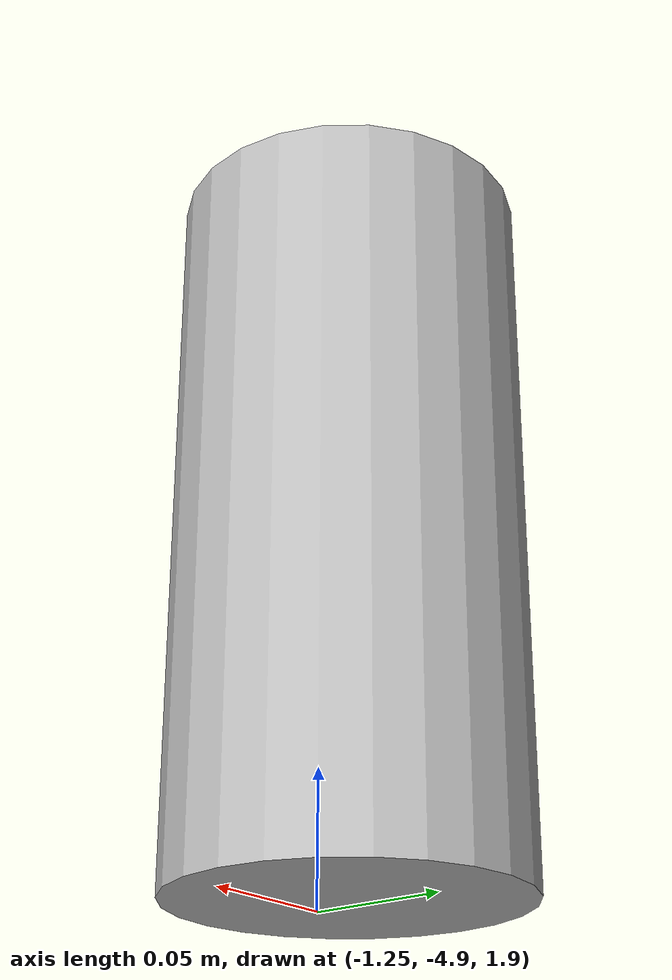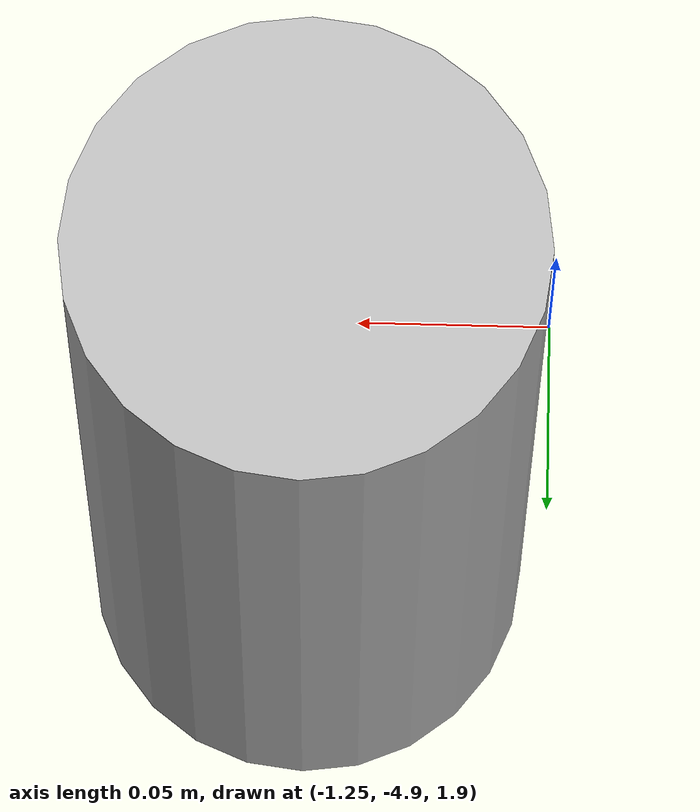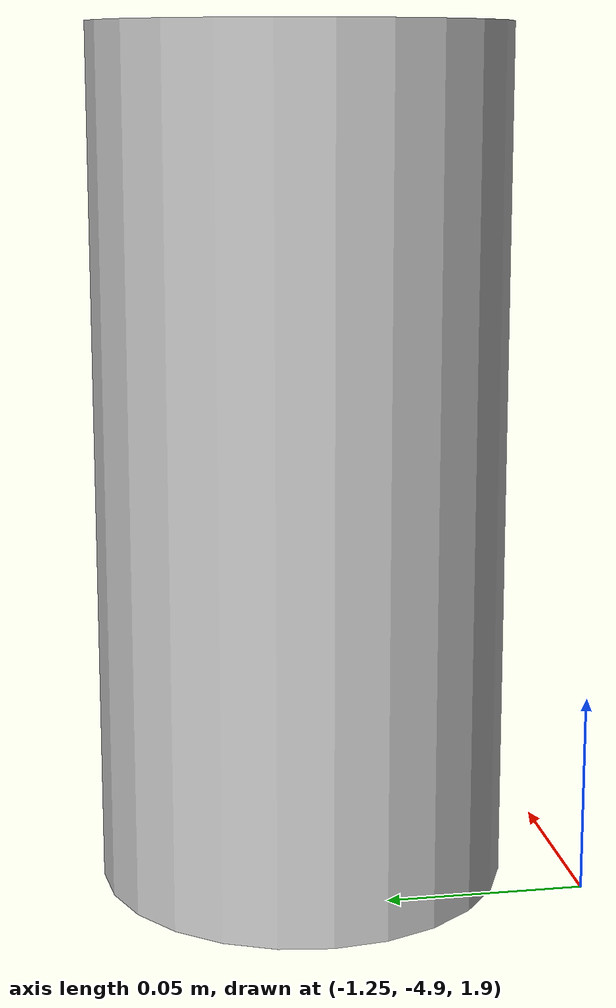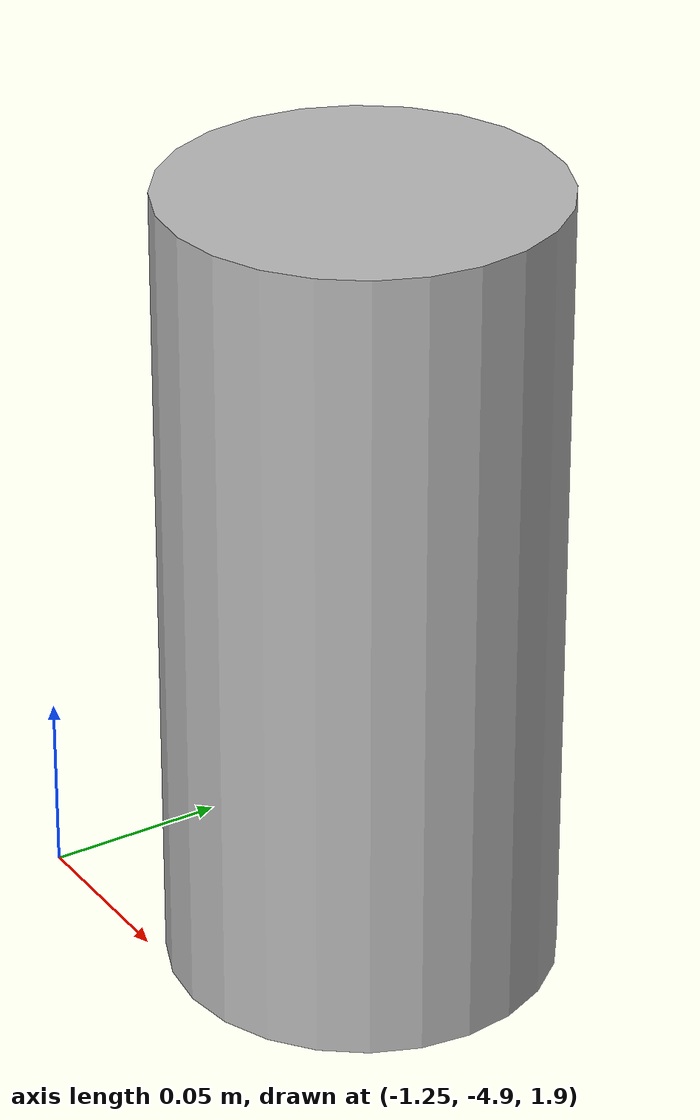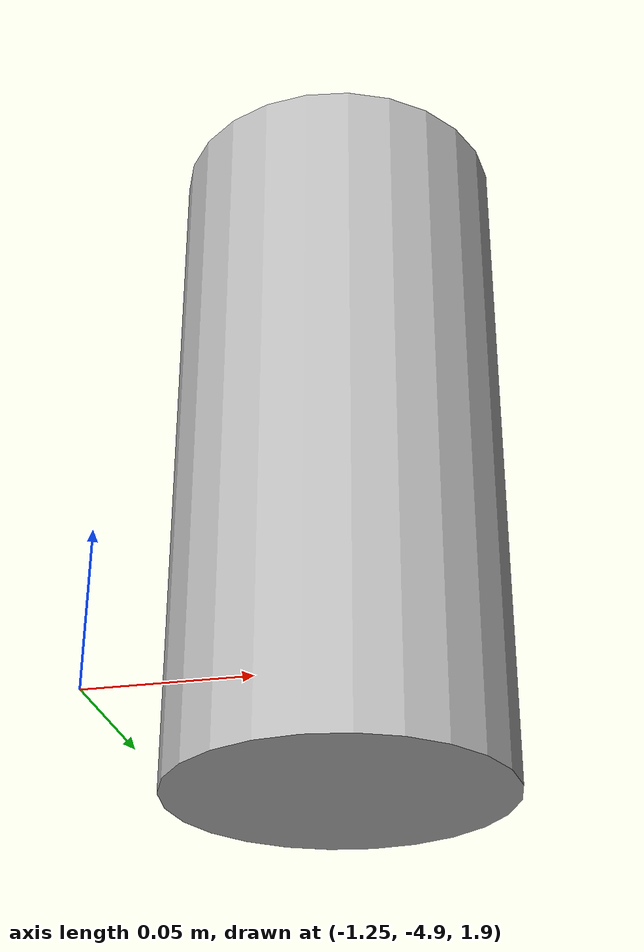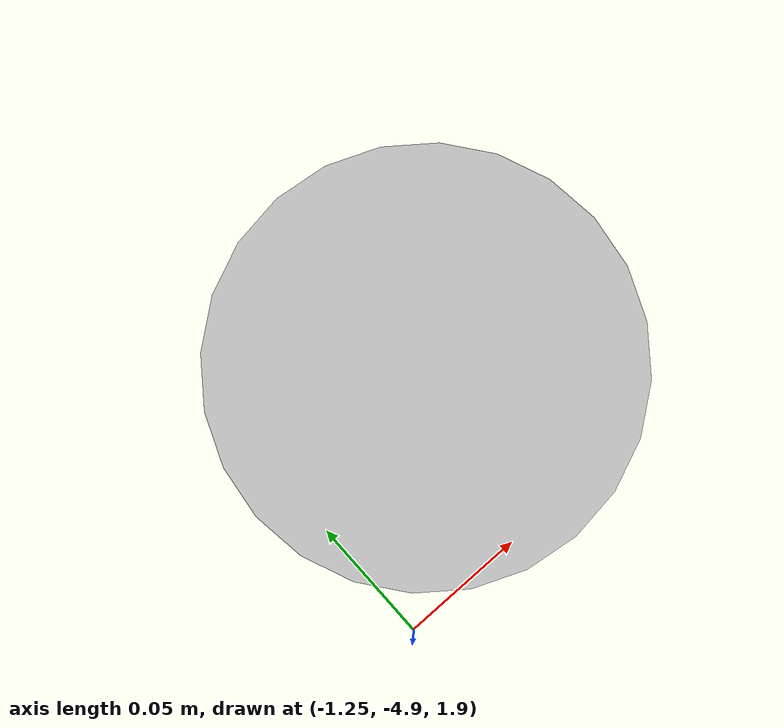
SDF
<?xml version="1.0" ?>
<sdf version="1.5">
  <model name="beer">
    <static>false</static>
  	<pose>-1.188616 -4.837664 2 0 0 0</pose>
    <link name="link">
      <inertial>
        <mass>0.390</mass>
        <inertia>
          <ixx>0.00058</ixx>
          <ixy>0</ixy>
          <ixz>0</ixz>
          <iyy>0.00058</iyy>
          <iyz>0</iyz>
          <izz>0.00019</izz>
        </inertia>
      </inertial>
      <collision name="collision">
        <geometry>
          <cylinder>
            <radius>0.055000</radius>
            <length>0.230000</length>
          </cylinder>
        </geometry>
      </collision>
      <visual name="visual">
        <geometry>
          <cylinder>
            <radius>0.055000</radius>
            <length>0.230000</length>
          </cylinder>
        </geometry>
        <material>
          <script>
            <uri>model://beer/materials/scripts</uri>
            <uri>model://beer/materials/textures</uri>
            <name>Beer/Diffuse</name>
          </script>
        </material>
      </visual>
    </link>
  </model>
</sdf>
